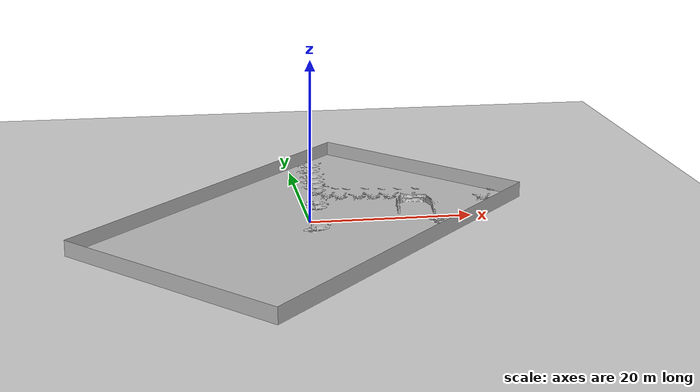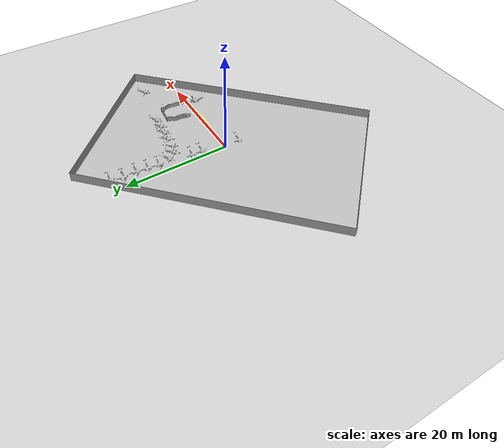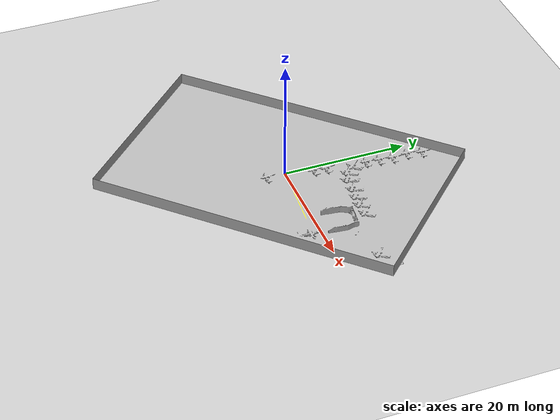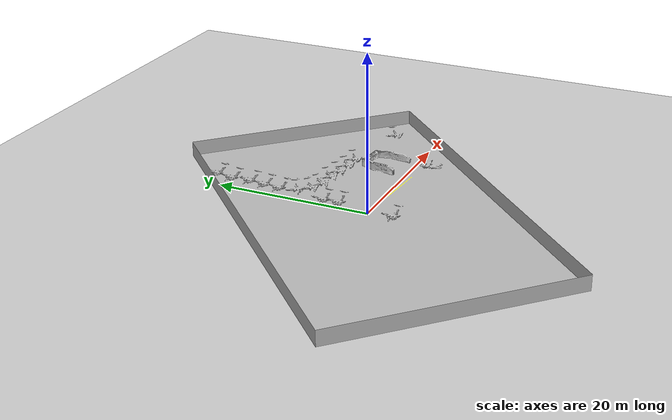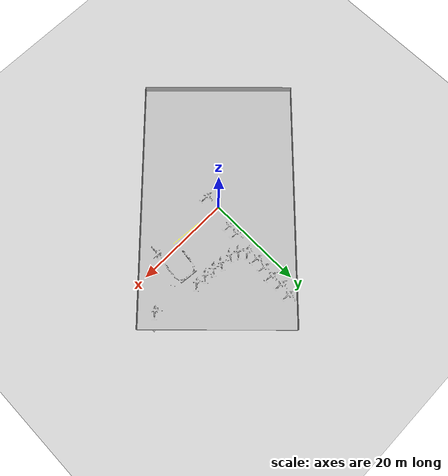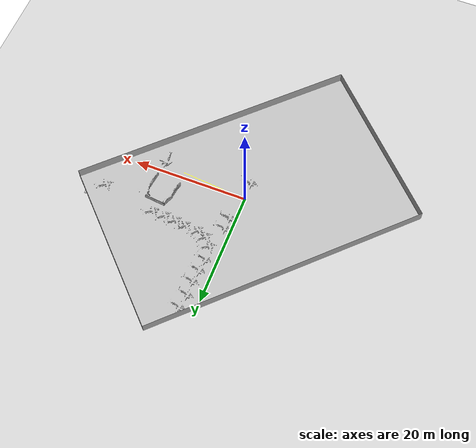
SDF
<sdf version="1.7">
 <world name="default">
  <light name="sun" type="directional">
   <pose>0 0 10 0 -0 0</pose>
   <diffuse>1.0 1.0 1.0 1</diffuse>
   <specular>0.9 0.9 0.9 1</specular>
   <attenuation>
    <range>1000</range>
    <constant>0.9</constant>
    <linear>0.01</linear>
    <quadratic>0.001</quadratic>
   </attenuation>
   <direction>-0.5 0.1 -0.9</direction>
   <spot><inner_angle>0</inner_angle><outer_angle>0</outer_angle><falloff>0</falloff></spot>
  </light>
  <model name="ground_plane">
   <static>1</static>
   <link name="link">
    <collision name="collision">
     <geometry><plane><normal>0 0 1</normal><size>100 100</size></plane></geometry>
     <surface><friction><ode><mu>100</mu><mu2>50</mu2></ode></friction></surface>
    </collision>
    <visual name="visual">
     <cast_shadows>0</cast_shadows>
     <geometry><plane><normal>0 0 1</normal><size>100 100</size></plane></geometry>
     <material>
      <script><uri>file://media/materials/scripts/gazebo.material</uri><name>Gazebo/Grey</name></script>
     </material>
    </visual>
   </link>
  </model>
  <gravity>0 0 -9.8</gravity>
  <magnetic_field>6e-06 2.3e-05 -4.2e-05</magnetic_field>
  <atmosphere type="adiabatic"/>
  <physics type="ode">
   <max_step_size>0.001</max_step_size>
   <real_time_factor>1</real_time_factor>
   <real_time_update_rate>1000</real_time_update_rate>
  </physics>
  <scene><ambient>0.6 0.6 0.6 1</ambient><background>0.7 0.7 0.7 1</background><shadows>1</shadows></scene>
  <spherical_coordinates>
   <surface_model>EARTH_WGS84</surface_model>
   <latitude_deg>0</latitude_deg>
   <longitude_deg>0</longitude_deg>
   <elevation>0</elevation>
   <heading_deg>0</heading_deg>
  </spherical_coordinates>
  <model name="airport">
   <static>1</static>
   <link name="airport">
    <collision name="airport_collision">
     <geometry><mesh><scale>0.05 0.05 0.05</scale><uri>model://airport/airport.dae</uri></mesh></geometry>
    </collision>
    <visual name="airport">
     <cast_shadows>0</cast_shadows>
     <geometry><mesh><scale>0.05 0.05 0.05</scale><uri>model://airport/airport.dae</uri></mesh></geometry>
     <material><script><name>air_port</name><uri>model://airport/airport.dae</uri></script></material>
    </visual>
   </link>
   <pose>-0.036577 -0.065402 0 0 -0 0.783028</pose>
  </model>
 </world>
</sdf>
